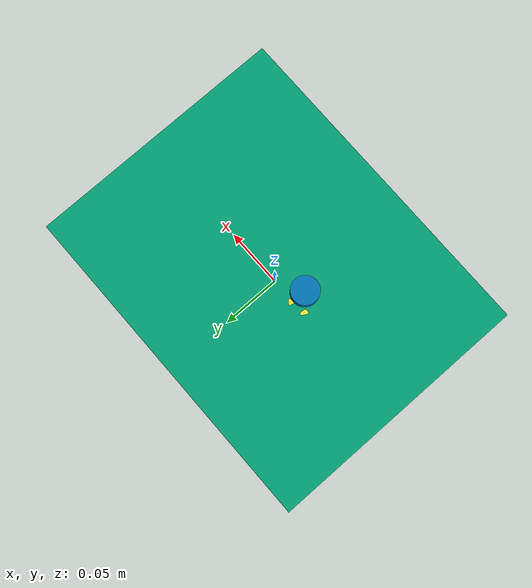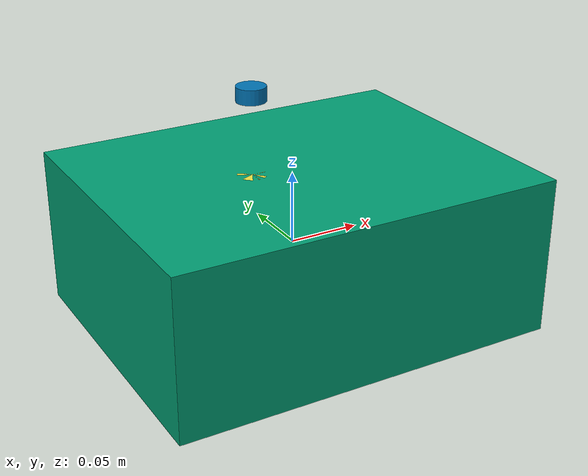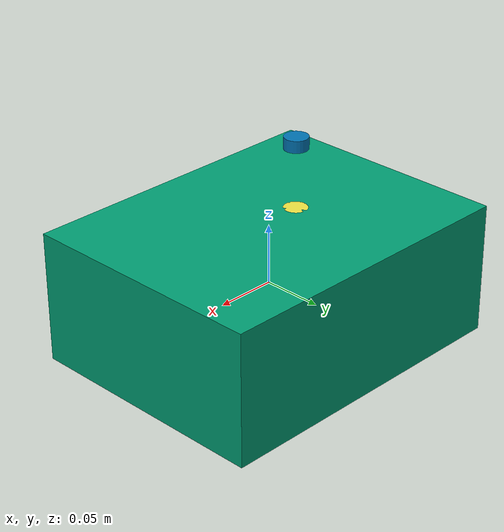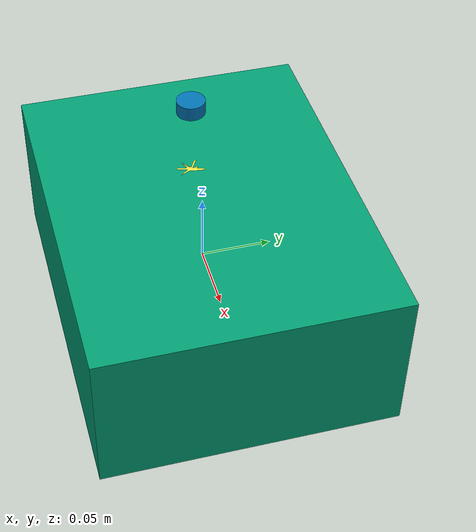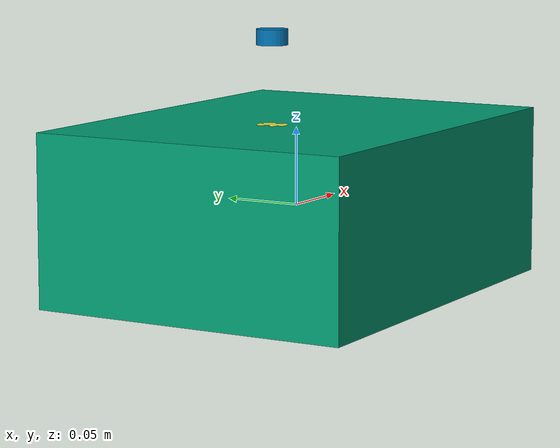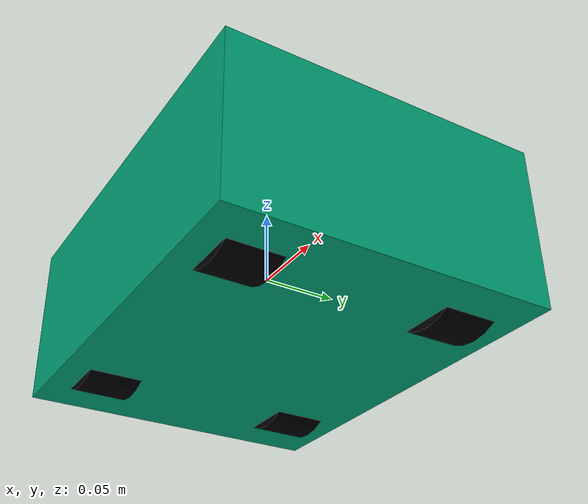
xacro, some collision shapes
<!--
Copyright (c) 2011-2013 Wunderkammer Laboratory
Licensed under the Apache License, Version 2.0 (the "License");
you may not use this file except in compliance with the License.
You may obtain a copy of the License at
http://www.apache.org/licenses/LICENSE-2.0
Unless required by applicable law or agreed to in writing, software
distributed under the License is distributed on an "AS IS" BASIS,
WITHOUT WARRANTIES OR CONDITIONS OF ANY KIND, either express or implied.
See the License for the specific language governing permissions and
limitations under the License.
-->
<?xml version="1.0"?>

<robot name="em_3905" xmlns:xacro="http://www.ros.org/wiki/xacro">

  <xacro:property name="degrees_45" value="0.785398163"/>
  <xacro:property name="degrees_90" value="1.57079633"/>

  <!-- chassis_length is measured along the x axis, chassis_width
       along the y axis, and chassis_height along the z axis. -->
  <xacro:property name="chassis_length" value="0.10"/>
  <xacro:property name="chassis_width" value="0.03"/>
  <xacro:property name="chassis_height" value="0.01"/>
  <xacro:property name="chassis_mass" value="0.388"/>

  <xacro:property name="battery_x_offset" value="0.055"/>
  <xacro:property name="battery_dist" value="0.065"/>
  <xacro:property name="battery_comp_depth" value="0.02"/>
  <xacro:property name="battery_comp_angle" value="0.34906585"/>
  <xacro:property name="battery_length" value="0.06"/>
  <xacro:property name="battery_width" value="0.02"/>
  <xacro:property name="battery_height" value="0.01"/>
  <xacro:property name="battery_mass" value="0.35"/>

  <xacro:property name="hub_dia" value="0.05"/>
  <xacro:property name="tire_dia" value="0.20605"/>
  <xacro:property name="tire_width" value="0.0889"/>
  <xacro:property name="hex_hub_depth" value="0.01445"/>
  <xacro:property name="wheel_mass" value="0.35"/>

  <xacro:property name="wheelbase" value="0.18"/>
  <xacro:property name="hex_hub_dist" value="0.20"/>
  <xacro:property name="axle_length" value="0.03"/>
  <xacro:property name="wheel_travel" value="0.01"/>
  <xacro:property name="shock_z_offset" value="0.03"/>

  <xacro:property name="shock_eff_limit" value="12.5106"/>
  <xacro:property name="shock_vel_limit" value="0"/>

  <xacro:property name="axle_eff_limit" value="0.22766"/>
  <xacro:property name="axle_vel_limit" value="3.8696"/>

  <xacro:property name="servo_stall_torque" value="0.5649"/>
  <xacro:property name="servo_no_load_speed" value="4.553"/>

  <xacro:property name="ctrl_period" value="0.01"/>

  <material name="battery_mat">
    <color rgba="0 0 1 1"/>
  </material>
  <material name="chassis_mat">
    <color rgba="0.5 0.5 0.5 1"/>
  </material>
  <material name="tire_mat">
    <color rgba="0 0 0 1"/>
  </material>

  <!-- Null inertial element. This is needed to make the model work with
       Gazebo. -->
  <xacro:macro name="null_inertial">
    <inertial>
      <mass value="0.001"/>
      <inertia ixx="0.001" ixy="0" ixz="0" iyy="0.001" iyz="0" izz="0.001"/>
    </inertial>
  </xacro:macro>

  <!-- Inertia of a solid cuboid. Width is measured along the x axis, depth
       along the y axis, and height along the z axis. -->
  <xacro:macro name="solid_cuboid_inertial"
               params="width depth height mass *origin">
    <inertial>
      <xacro:insert_block name="origin"/>
      <mass value="${mass}"/>
      <inertia ixx="${mass * (depth * depth + height * height) / 12}"
               ixy="0" ixz="0"
               iyy="${mass * (width * width + height * height) / 12}"
               iyz="0"
               izz="${mass * (width * width + depth * depth) / 12}"/>
    </inertial>
  </xacro:macro>

  <xacro:macro name="thick_walled_tube_inertial"
               params="inner_rad outer_rad height mass">
    <inertial>
      <mass value="${mass}"/>
      <inertia ixx="${(1 / 12) * mass * (3 * (inner_rad * inner_rad +
                    outer_rad * outer_rad) + height * height)}"
               ixy="0" ixz="0"
               iyy="${(1 / 12) * mass * (3 * (inner_rad * inner_rad +
                    outer_rad * outer_rad) + height * height)}"
               iyz="0"
               izz="${mass * (inner_rad * inner_rad +
                    outer_rad * outer_rad) / 2}"/>
    </inertial>
  </xacro:macro>

  <!-- Battery -->
  <xacro:macro name="battery" params="prefix reflect">
    <joint name="chassis_to_${prefix}_battery" type="fixed">
      <parent link="chassis"/>
      <child link="${prefix}_battery_offset"/>
      <origin xyz="${battery_x_offset - battery_length / 2}
                   ${reflect * battery_dist / 2}
                   0"
              rpy="${reflect * battery_comp_angle} 0 0"/>
    </joint>

    <link name="${prefix}_battery_offset">
      <xacro:null_inertial/>
    </link>

    <joint name="offset_to_${prefix}_battery" type="fixed">
      <parent link="${prefix}_battery_offset"/>
      <child link="${prefix}_battery"/>
      <origin xyz="0
                   ${reflect * battery_width / 2}
                   ${(battery_height / 2) - battery_comp_depth}"/>
    </joint>

    <link name="${prefix}_battery">
      <visual>
        <geometry>
          <box size="${battery_length} ${battery_width} ${battery_height}"/>
        </geometry>
        <material name="battery_mat"/>
      </visual>

      <collision>
        <geometry>
          <box size="${battery_length} ${battery_width} ${battery_height}"/>
        </geometry>
      </collision>

      <xacro:solid_cuboid_inertial
         width="${battery_length}" depth="${battery_width}"
         height="${battery_height}" mass="${battery_mass}">
        <origin/>
      </xacro:solid_cuboid_inertial>
    </link>

    <gazebo reference="${prefix}_battery">
      <material>Gazebo/Blue</material>
    </gazebo>
  </xacro:macro>

  <!-- Shock absorber -->
  <xacro:macro name="shock"
               params="lr_prefix fr_prefix lr_reflect fr_reflect child">
    <joint name="${lr_prefix}_${fr_prefix}_shock" type="prismatic">
      <parent link="chassis"/>
      <child link="${child}"/>

      <origin xyz="${fr_reflect * wheelbase / 2}
                   ${lr_reflect * ((hex_hub_dist / 2) - axle_length)}
                   ${(wheel_travel / 2) - shock_z_offset}"/>
      <axis xyz="0 0 -1"/>
      <limit lower="0" upper="0"
             effort="0" velocity="0"/>
    </joint>
  </xacro:macro>

  <!-- The "wheel" macro defines an axle carrier, axle, and wheel. -->
  <xacro:macro name="wheel" params="lr_prefix fr_prefix lr_reflect">
    <link name="${lr_prefix}_${fr_prefix}_axle_carrier">
      <xacro:null_inertial/>
    </link>

    <!-- The left and right axles have the same axis so that identical
         rotation values cause the wheels to rotate in the same direction. -->
    <joint name="${lr_prefix}_${fr_prefix}_axle" type="continuous">
      <parent link="${lr_prefix}_${fr_prefix}_axle_carrier"/>
      <child link="${lr_prefix}_${fr_prefix}_wheel"/>
      <origin rpy="${degrees_90} 0 0"/>
      <axis xyz="0 0 -1"/>
      <limit effort="${axle_eff_limit}" velocity="${axle_vel_limit}"/>
    </joint>
    <transmission name="${lr_prefix}_${fr_prefix}_axle_trans">
      <type>transmission_interface/SimpleTransmission</type>
      <joint name="${lr_prefix}_${fr_prefix}_axle">
        <hardwareInterface>EffortJointInterface</hardwareInterface>
        <mechanicalReduction>1</mechanicalReduction>
      </joint>
      <actuator name="${lr_prefix}_${fr_prefix}_axle_act">
        <hardwareInterface>EffortJointInterface</hardwareInterface>
        <mechanicalReduction>1</mechanicalReduction>
      </actuator>
    </transmission>

    <link name="${lr_prefix}_${fr_prefix}_wheel">
      <visual>
        <origin xyz="0
                     ${lr_reflect * (axle_length - (tire_width /
                     2 - hex_hub_depth))}
                     0"/>
        <geometry>
          <cylinder radius="0.035" length="0.035" />
        </geometry>
        <material name="tire_mat"/>
      </visual>

      <collision>
        <origin xyz="0
                     ${lr_reflect * (axle_length - (tire_width /
                     2 - hex_hub_depth))}
                     0"/>
        <geometry>
          <cylinder radius="0.035" length="0.035" />
        </geometry>
      </collision>

      <xacro:thick_walled_tube_inertial
          inner_rad="${hub_dia / 2}" outer_rad="${tire_dia / 2}"
          height="${tire_width}" mass="${wheel_mass}"/>
    </link>

    <gazebo reference="${lr_prefix}_${fr_prefix}_wheel">
      <material>Gazebo/Black</material>
    </gazebo>
  </xacro:macro>

  <!-- Front wheel -->
  <xacro:macro name="front_wheel"
               params="lr_prefix fr_prefix lr_reflect fr_reflect">
    <xacro:shock lr_prefix="${lr_prefix}" fr_prefix="${fr_prefix}"
                 lr_reflect="${lr_reflect}" fr_reflect="${fr_reflect}"
                 child="${lr_prefix}_steering_link"/>

    <link name="${lr_prefix}_steering_link">
      <xacro:null_inertial/>
    </link>

    <joint name="${lr_prefix}_steering_joint" type="revolute">
      <parent link="${lr_prefix}_steering_link"/>
      <child link="${lr_prefix}_${fr_prefix}_axle_carrier"/>
      <axis xyz="0 0 1"/>
      <limit lower="${-degrees_45}" upper="${degrees_45}"
             effort="${servo_stall_torque}" velocity="${servo_no_load_speed}"/>
    </joint>
    <transmission name="${lr_prefix}_steering_trans">
      <type>transmission_interface/SimpleTransmission</type>
      <joint name="${lr_prefix}_steering_joint">
        <hardwareInterface>EffortJointInterface</hardwareInterface>
        <mechanicalReduction>1</mechanicalReduction>
      </joint>
      <actuator name="${lr_prefix}_steering_act">
        <hardwareInterface>EffortJointInterface</hardwareInterface>
        <mechanicalReduction>1</mechanicalReduction>
      </actuator>
    </transmission>

    <xacro:wheel lr_prefix="${lr_prefix}" fr_prefix="${fr_prefix}"
                 lr_reflect="${lr_reflect}"/>
  </xacro:macro>

  <!-- Rear wheel -->
  <xacro:macro name="rear_wheel"
               params="lr_prefix fr_prefix lr_reflect fr_reflect">
    <xacro:shock lr_prefix="${lr_prefix}" fr_prefix="${fr_prefix}"
                 lr_reflect="${lr_reflect}" fr_reflect="${fr_reflect}"
                 child="${lr_prefix}_${fr_prefix}_axle_carrier"/>
    <xacro:wheel lr_prefix="${lr_prefix}" fr_prefix="${fr_prefix}"
                 lr_reflect="${lr_reflect}"/>
  </xacro:macro>

  <!-- base_link must have geometry so that its axes can be displayed in
       rviz. -->
  <link name="base_link">
    <visual>
      <geometry>
        <box size="0.01 0.01 0.01"/>
      </geometry>
      <material name="chassis_mat"/>
    </visual>
  </link>
  <gazebo reference="base_link">
    <material>Gazebo/Grey</material>
  </gazebo>

  <!-- Chassis -->
  <link name="chassis">
    <visual>
      <origin xyz="0 0 ${-chassis_height / 2}"/>
      <geometry>
        <box size="${chassis_length} ${chassis_width} ${chassis_height}"/>
      </geometry>
      <material name="chassis_mat"/>
    </visual>

    <collision>
      <origin xyz="0 0 ${-chassis_height / 2}"/>
      <geometry>
        <box size="${chassis_length} ${chassis_width} ${chassis_height}"/>
      </geometry>
    </collision>

    <xacro:solid_cuboid_inertial
        width="${chassis_length}" depth="${chassis_width}"
        height="${chassis_height}" mass="${chassis_mass}">
      <origin xyz="0 0 ${-chassis_height / 2}"/>
    </xacro:solid_cuboid_inertial>
  </link>
  <gazebo reference="chassis">
    <material>Gazebo/Grey</material>
  </gazebo>

  <joint name="base_link_to_chasis" type="fixed">
    <parent link="base_link"/>
    <child link="chassis"/>
  </joint>

  <!-- Body -->
  <link name="body">
    <visual name="visual">
      <origin xyz="0 0 0.00"/>
      <geometry>
        <mesh filename="package://ackermann_vehicle_description/meshes/mastadon.dae" />
      </geometry>
    </visual>
    <collision name="collision">
      <origin xyz="0 0 0.00"/>
      <geometry>
        <box size="0.27 0.21 0.11"/>
      </geometry>
    </collision>
    <inertial>
      <mass value="0.00001"/>
      <inertia ixx="0.00001" ixy="0" ixz="0" iyy="0.00001" iyz="0" izz="0.00001"/>
    </inertial>
  </link>

  <joint name="chasis_to_body" type="fixed">
    <parent link="chassis"/>
    <child link="body"/>
  </joint>

  <link name="laser">
    <visual>
      <origin xyz="-0.03 0 0.05"/>
      <geometry>
        <cylinder length="0.01" radius="0.01"/>
      </geometry>
    </visual>
  </link>

  <joint name="body_to_laser" type="fixed">
    <parent link="chassis"/>
    <child link="laser"/>
  </joint>

  <link name="camera">
    <visual>
      <geometry>
        <cylinder length="0.01" radius="0.01"/>
      </geometry>
    </visual>
  </link>

  <joint name="body_to_camera" type="fixed">
    <origin xyz="-0.03 0 0.11"/>
    <parent link="chassis"/>
    <child link="camera"/>
  </joint>

  <gazebo reference="camera" >
    <sensor name="$(arg namespace)camera_sensor" type="camera">

      <update_rate>10.0</update_rate>
      <camera name="$(arg namespace)rgb_camera">
        <horizontal_fov>0.785398163</horizontal_fov> <!-- 45 degrees -->
        <image>
          <width>320</width>
          <height>240</height>
          <format>R8G8B8</format>
        </image>
      </camera>

      <plugin name="$(arg namespace)camera_plugin" filename="libgazebo_ros_camera.so">
	<imageTopicName>image</imageTopicName>
      </plugin>

    </sensor>
  </gazebo>

  <gazebo>

    <link name="hokuyo_link">
      <pose>-0.02 0 0.1175 0 0 0</pose>
      <visual name="visual">
        <geometry>
          <mesh>
            <uri>model://hokuyo/meshes/hokuyo.dae</uri>
          </mesh>
        </geometry>
      </visual>
      <collision name="collision">
        <geometry>
          <box>
            <size>0.1 0.1 0.05</size>
          </box>
        </geometry>
      </collision>

      <sensor name="lasertraxx$(arg namespace)" type="ray">

        <ray>
          <scan>
            <horizontal>
              <samples>360</samples>
              <resolution>1</resolution>
              <min_angle>-3.1415</min_angle>
              <max_angle>3.1415</max_angle>
            </horizontal>
          </scan>
          <range>
            <min>0.10</min>
            <max>6</max>
            <resolution>0.01</resolution>
          </range>
        </ray>
        <plugin name="laser" filename="libRayPlugin.so" />
        <always_on>1</always_on>
        <update_rate>2</update_rate>
        <visualize>false</visualize>

        <plugin name="$(arg namespace)gazebo_ros_laser_controller" filename="libgazebo_ros_laser.so">
          <gaussianNoise>0.005</gaussianNoise>
          <alwaysOn>true</alwaysOn>
          <updateRate>2</updateRate>
          <topicName>/$(arg namespace)/scan</topicName>
          <frameName>/$(arg namespace)/base_link</frameName>
          <hokuyoMinIntensity>101</hokuyoMinIntensity>
        </plugin>

      </sensor>

    </link>

    <joint name="body_to_hokuyo" type="revolute">
      <child>hokuyo_link</child>
      <parent>body</parent>
      <axis>
        <xyz>0 0 1</xyz>
        <limit>
          <upper>0</upper>
          <lower>0</lower>
        </limit>
      </axis>
    </joint>
  </gazebo>

  <!-- Batteries -->
  <xacro:battery prefix="left" reflect="1"/>
  <xacro:battery prefix="right" reflect="-1"/>

  <!-- Wheels -->
  <xacro:front_wheel lr_prefix="left" fr_prefix="front"
                     lr_reflect="1" fr_reflect="1"/>
  <xacro:front_wheel lr_prefix="right" fr_prefix="front"
                     lr_reflect="-1" fr_reflect="1"/>
  <xacro:rear_wheel lr_prefix="left" fr_prefix="rear"
                    lr_reflect="1" fr_reflect="-1"/>
  <xacro:rear_wheel lr_prefix="right" fr_prefix="rear"
                    lr_reflect="-1" fr_reflect="-1"/>

  <gazebo>
    <plugin name="ground_truth" filename="libgazebo_ros_p3d.so">
      <frameName>map</frameName>
      <bodyName>base_link</bodyName>
      <tfName>/$(arg namespace)/base_link</tfName>
      <topicName>odom_ground_truth</topicName>
      <updateRate>5.0</updateRate>
    </plugin>
  </gazebo>

  <gazebo>
    <plugin name="gazebo_ros_control" filename="libgazebo_ros_control.so">
      <robotNamespace>/$(arg namespace)</robotNamespace>
    </plugin>
  </gazebo>

</robot>
